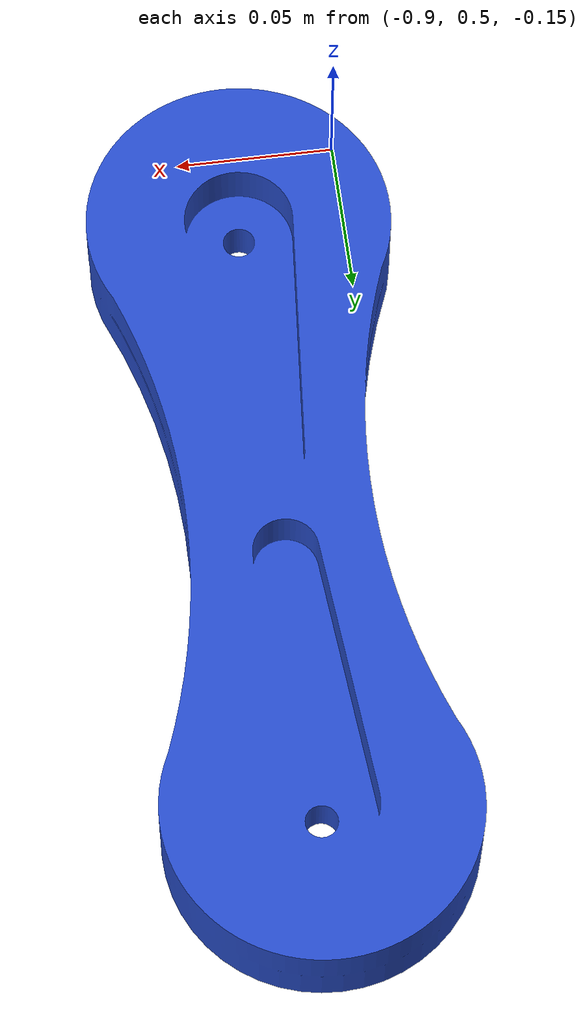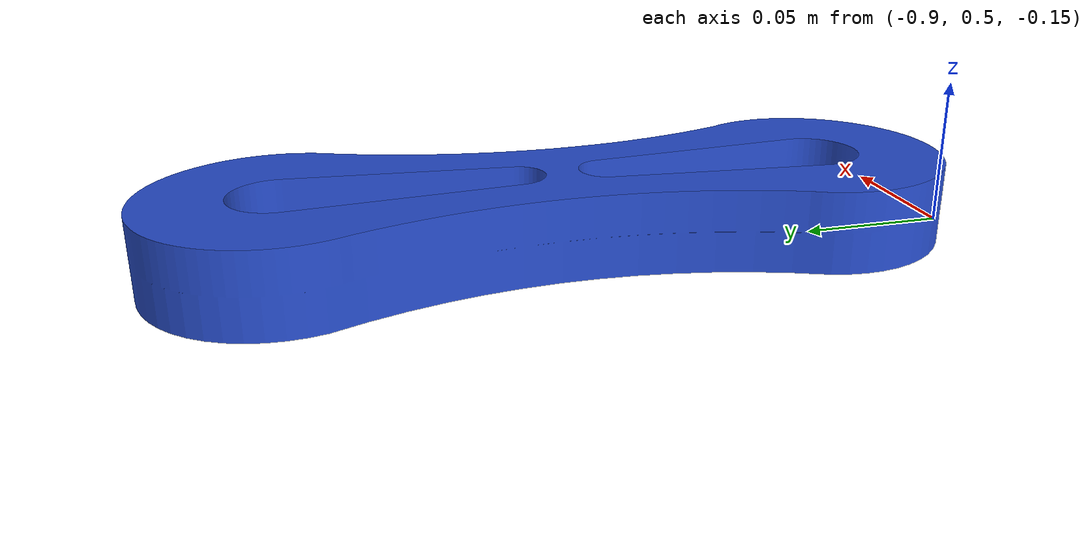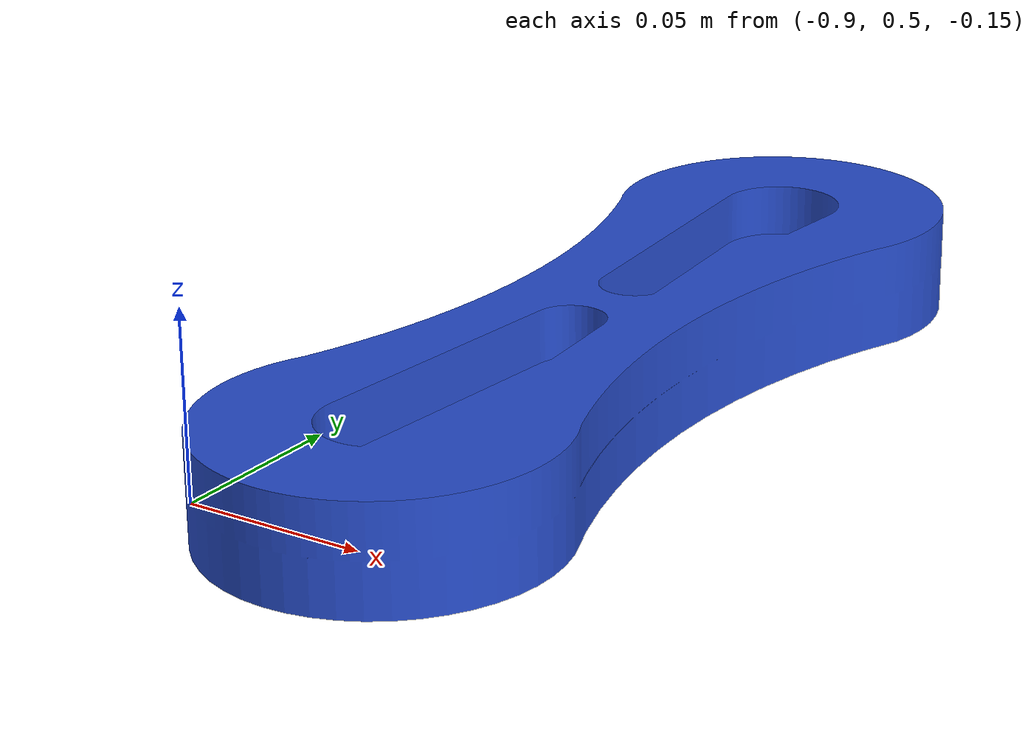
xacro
<?xml version="1.0"?>

<robot name="billi" xmlns:xacro="http://www.ros.org/wiki/xacro">

<!--LEFT HAND LINK -->
<link name="leg4">
    	<visual>
		<origin rpy="0 3.14 0" xyz="0 0 0"/>
      		<geometry>
        		<mesh filename="package://billi_sim/models/meshes/leg-upper.stl" scale ="5 5 5"/>
      		</geometry>
      		<material name="blue"/>
    	</visual>
    	<collision>
		<origin rpy="0 3.14 0" xyz="0 0 0"/>
      		<geometry>
        		<mesh filename="package://billi_sim/models/meshes/leg-upper.stl" scale ="5 5 5"/>
      		</geometry>
    	</collision>
	<inertial>
		  <mass value="1.0"/>
		  <origin rpy="0 0 0" xyz="0 0 0.1"/>
		  <inertia ixx="0.13157" ixy="0" ixz="0" iyy="0.01122" iyz="0" izz="0.14025"/>
	</inertial>
</link>
<gazebo reference="leg4">
        <kp>1000.0</kp>
        <kd>1000.0</kd>
        <mu1>10.0</mu1>
        <mu2>10.0</mu2>
        <material>Gazebo/blue</material>
    </gazebo>
</robot>
